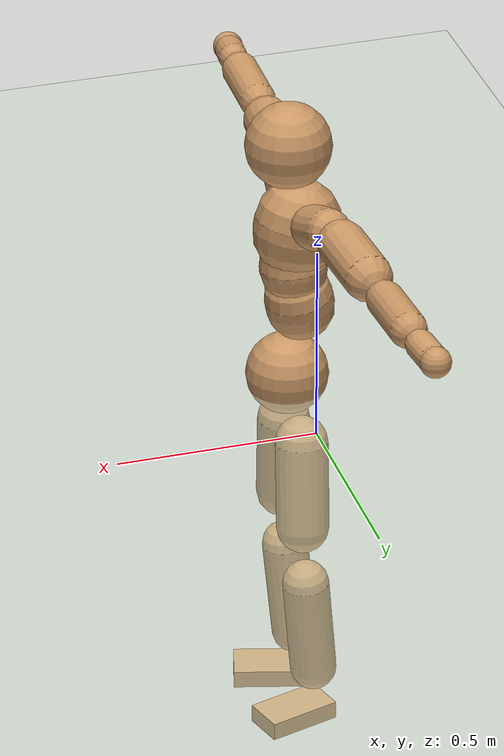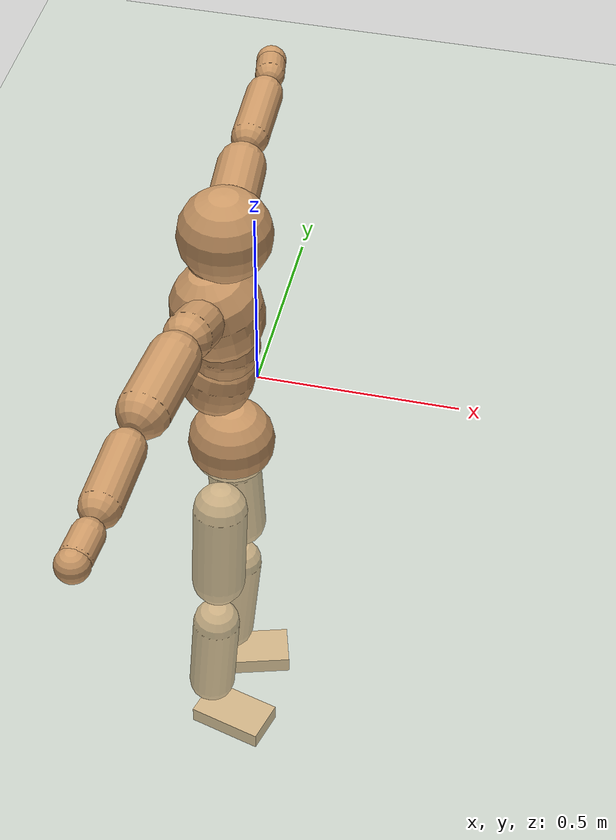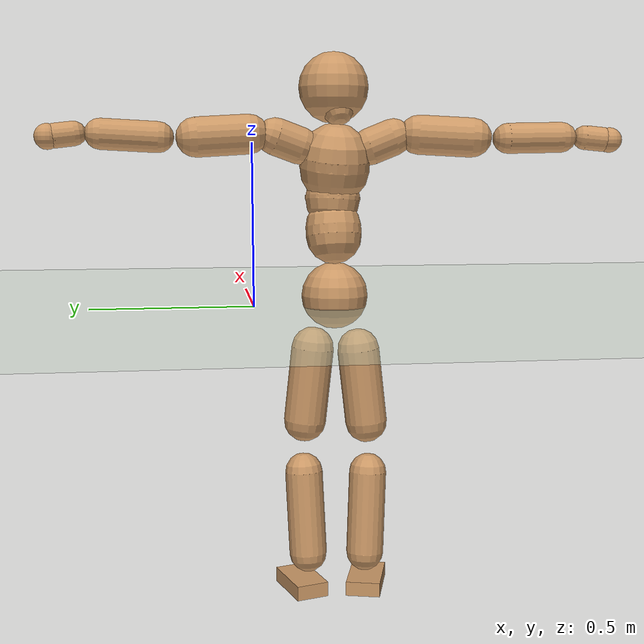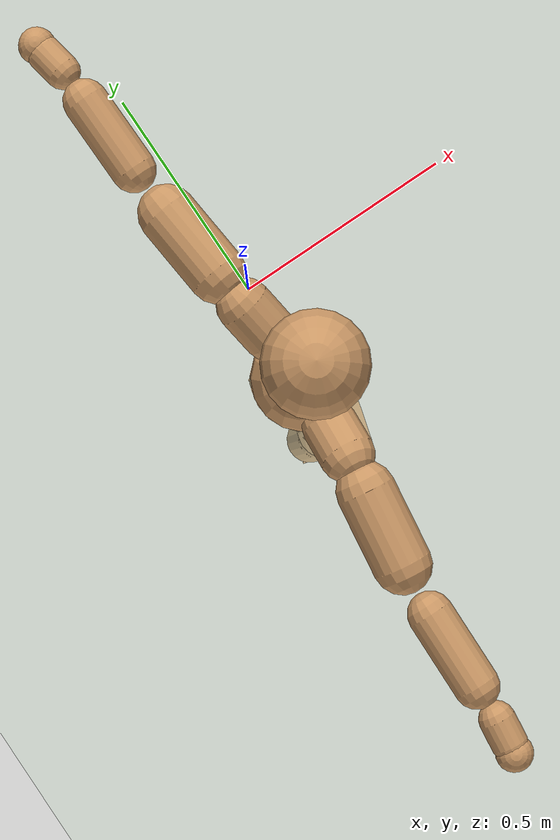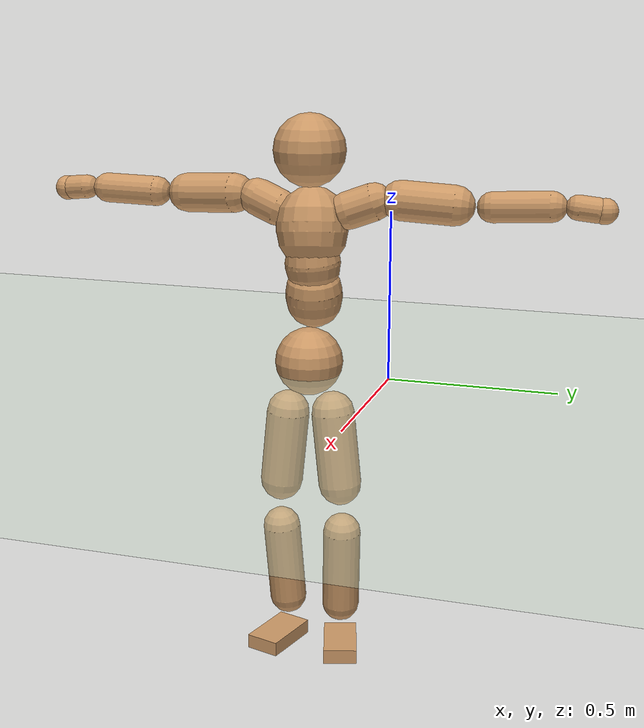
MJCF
<mujoco model="humanoid">
  <compiler coordinate="local"/>
  <default>
    <joint damping="0.0" armature="0.01" stiffness="0.0" limited="true"/>
    <geom conaffinity="1" condim="3" contype="7" margin="0.001" rgba="0.8 0.6 .4 1"/>
  </default>
  <asset>
    <texture type="skybox" builtin="gradient" rgb1=".4 .5 .6" rgb2="0 0 0" width="100" height="100"/>
    <texture builtin="flat" height="1278" mark="cross" markrgb="1 1 1" name="texgeom" random="0.01" rgb1="0.8 0.6 0.4" rgb2="0.8 0.6 0.4" type="cube" width="127"/>
    <texture builtin="checker" height="100" name="texplane" rgb1="0 0 0" rgb2="0.8 0.8 0.8" type="2d" width="100"/>
    <material name="MatPlane" reflectance="0.5" shininess="1" specular="1" texrepeat="60 60" texture="texplane"/>
    <material name="geom" texture="texgeom" texuniform="true"/>
  </asset>
  <worldbody>
    <light cutoff="100" diffuse="1 1 1" dir="-0 0 -1.3" directional="true" exponent="1" pos="0 0 1.3" specular=".1 .1 .1"/>
    <geom conaffinity="1" condim="3" name="floor" pos="0 0 0" rgba="0.8 0.9 0.8 1" size="100 100 .2" type="plane" material="MatPlane"/>
    <body name="Pelvis" pos="-0.0021 -0.2504 0.0331">
      <freejoint name="Pelvis"/>
      <geom type="sphere" contype="1" conaffinity="1" density="500" size="0.1034" pos="0.0000 0.0000 0.0000" name="Pelvis"/>
      <body name="L_Hip" pos="-0.0171 0.0629 -0.0854">
        <joint name="L_Hip_x" type="hinge" pos="0 0 0" axis="1 0 0" stiffness="800" damping="80" armature="0.02" range="-180.0000 180.0000"/>
        <joint name="L_Hip_y" type="hinge" pos="0 0 0" axis="0 1 0" stiffness="800" damping="80" armature="0.02" range="-180.0000 180.0000"/>
        <joint name="L_Hip_z" type="hinge" pos="0 0 0" axis="0 0 1" stiffness="800" damping="80" armature="0.02" range="-180.0000 180.0000"/>
        <geom type="capsule" contype="1" conaffinity="1" density="500" fromto="0.0012 0.0083 -0.0770 0.0049 0.0331 -0.3080" size="0.0661" name="L_Hip"/>
        <body name="L_Knee" pos="0.0061 0.0414 -0.385">
          <joint name="L_Knee_x" type="hinge" pos="0 0 0" axis="1 0 0" stiffness="800" damping="80" armature="0.02" range="-180.0000 180.0000"/>
          <joint name="L_Knee_y" type="hinge" pos="0 0 0" axis="0 1 0" stiffness="800" damping="80" armature="0.02" range="-180.0000 180.0000"/>
          <joint name="L_Knee_z" type="hinge" pos="0 0 0" axis="0 0 1" stiffness="800" damping="80" armature="0.02" range="-180.0000 180.0000"/>
          <geom type="capsule" contype="1" conaffinity="1" density="500" fromto="-0.0081 -0.0033 -0.0869 -0.0322 -0.0134 -0.3478" size="0.0587" name="L_Knee"/>
          <body name="L_Ankle" pos="-0.0403 -0.0167 -0.4347">
            <joint name="L_Ankle_x" type="hinge" pos="0 0 0" axis="1 0 0" stiffness="800" damping="80" armature="0.02" range="-180.0000 180.0000"/>
            <joint name="L_Ankle_y" type="hinge" pos="0 0 0" axis="0 1 0" stiffness="800" damping="80" armature="0.02" range="-180.0000 180.0000"/>
            <joint name="L_Ankle_z" type="hinge" pos="0 0 0" axis="0 0 1" stiffness="800" damping="80" armature="0.02" range="-180.0000 180.0000"/>
            <geom type="box" contype="1" conaffinity="1" density="500" pos="0.0634 0.0188 -0.0306" size="0.0934 0.0522 0.0231" quat="0.9897 0.0000 0.0000 0.1434" name="L_Ankle"/>
            <body name="L_Toe" pos="0.1268 0.0375 -0.0613">
              <joint name="L_Toe_x" type="hinge" pos="0 0 0" axis="1 0 0" stiffness="500" damping="50" armature="0.02" range="-180.0000 180.0000"/>
              <joint name="L_Toe_y" type="hinge" pos="0 0 0" axis="0 1 0" stiffness="500" damping="50" armature="0.02" range="-180.0000 180.0000"/>
              <joint name="L_Toe_z" type="hinge" pos="0 0 0" axis="0 0 1" stiffness="500" damping="50" armature="0.02" range="-180.0000 180.0000"/>
              <geom type="box" contype="1" conaffinity="1" density="500" pos="0.0000 0.0000 0.0291" size="0.0011 0.0026 0.0011" quat="0.9889 0.0000 0.0000 0.1484" name="L_Toe"/>
            </body>
          </body>
        </body>
      </body>
      <body name="R_Hip" pos="-0.0124 -0.0648 -0.0938">
        <joint name="R_Hip_x" type="hinge" pos="0 0 0" axis="1 0 0" stiffness="800" damping="80" armature="0.02" range="-180.0000 180.0000"/>
        <joint name="R_Hip_y" type="hinge" pos="0 0 0" axis="0 1 0" stiffness="800" damping="80" armature="0.02" range="-180.0000 180.0000"/>
        <joint name="R_Hip_z" type="hinge" pos="0 0 0" axis="0 0 1" stiffness="800" damping="80" armature="0.02" range="-180.0000 180.0000"/>
        <geom type="capsule" contype="1" conaffinity="1" density="500" fromto="-0.0014 -0.0083 -0.0769 -0.0056 -0.0333 -0.3075" size="0.0657" name="R_Hip"/>
        <body name="R_Knee" pos="-0.007 -0.0417 -0.3844">
          <joint name="R_Knee_x" type="hinge" pos="0 0 0" axis="1 0 0" stiffness="800" damping="80" armature="0.02" range="-180.0000 180.0000"/>
          <joint name="R_Knee_y" type="hinge" pos="0 0 0" axis="0 1 0" stiffness="800" damping="80" armature="0.02" range="-180.0000 180.0000"/>
          <joint name="R_Knee_z" type="hinge" pos="0 0 0" axis="0 0 1" stiffness="800" damping="80" armature="0.02" range="-180.0000 180.0000"/>
          <geom type="capsule" contype="1" conaffinity="1" density="500" fromto="-0.0075 0.0041 -0.0856 -0.0298 0.0164 -0.3422" size="0.0586" name="R_Knee"/>
          <body name="R_Ankle" pos="-0.0373 0.0206 -0.4278">
            <joint name="R_Ankle_x" type="hinge" pos="0 0 0" axis="1 0 0" stiffness="800" damping="80" armature="0.02" range="-180.0000 180.0000"/>
            <joint name="R_Ankle_y" type="hinge" pos="0 0 0" axis="0 1 0" stiffness="800" damping="80" armature="0.02" range="-180.0000 180.0000"/>
            <joint name="R_Ankle_z" type="hinge" pos="0 0 0" axis="0 0 1" stiffness="800" damping="80" armature="0.02" range="-180.0000 180.0000"/>
            <geom type="box" contype="1" conaffinity="1" density="500" pos="0.0678 -0.0185 -0.0312" size="0.0941 0.0541 0.0227" quat="0.9911 0.0000 0.0000 -0.1329" name="R_Ankle"/>
            <body name="R_Toe" pos="0.1356 -0.037 -0.0623">
              <joint name="R_Toe_x" type="hinge" pos="0 0 0" axis="1 0 0" stiffness="500" damping="50" armature="0.02" range="-180.0000 180.0000"/>
              <joint name="R_Toe_y" type="hinge" pos="0 0 0" axis="0 1 0" stiffness="500" damping="50" armature="0.02" range="-180.0000 180.0000"/>
              <joint name="R_Toe_z" type="hinge" pos="0 0 0" axis="0 0 1" stiffness="500" damping="50" armature="0.02" range="-180.0000 180.0000"/>
              <geom type="box" contype="1" conaffinity="1" density="500" pos="0.0000 0.0000 0.0312" size="0.0012 0.0027 0.0011" quat="0.9922 0.0000 0.0000 -0.1244" name="R_Toe"/>
            </body>
          </body>
        </body>
      </body>
      <body name="Torso" pos="-0.0425 0.0045 0.1298">
        <joint name="Torso_x" type="hinge" pos="0 0 0" axis="1 0 0" stiffness="1000" damping="100" armature="0.02" range="-180.0000 180.0000"/>
        <joint name="Torso_y" type="hinge" pos="0 0 0" axis="0 1 0" stiffness="1000" damping="100" armature="0.02" range="-180.0000 180.0000"/>
        <joint name="Torso_z" type="hinge" pos="0 0 0" axis="0 0 1" stiffness="1000" damping="100" armature="0.02" range="-180.0000 180.0000"/>
        <geom type="capsule" contype="1" conaffinity="1" density="500" fromto="0.0164 0.0027 0.0849 0.0109 0.0018 0.0566" size="0.0854" name="Torso"/>
        <body name="Spine" pos="0.0273 0.0045 0.1416">
          <joint name="Spine_x" type="hinge" pos="0 0 0" axis="1 0 0" stiffness="1000" damping="100" armature="0.02" range="-180.0000 180.0000"/>
          <joint name="Spine_y" type="hinge" pos="0 0 0" axis="0 1 0" stiffness="1000" damping="100" armature="0.02" range="-180.0000 180.0000"/>
          <joint name="Spine_z" type="hinge" pos="0 0 0" axis="0 0 1" stiffness="1000" damping="100" armature="0.02" range="-180.0000 180.0000"/>
          <geom type="capsule" contype="1" conaffinity="1" density="500" fromto="0.0029 -0.0016 0.0348 0.0019 -0.0010 0.0232" size="0.0841" name="Spine"/>
          <body name="Chest" pos="0.0048 -0.0026 0.058">
            <joint name="Chest_x" type="hinge" pos="0 0 0" axis="1 0 0" stiffness="1000" damping="100" armature="0.02" range="-180.0000 180.0000"/>
            <joint name="Chest_y" type="hinge" pos="0 0 0" axis="0 1 0" stiffness="1000" damping="100" armature="0.02" range="-180.0000 180.0000"/>
            <joint name="Chest_z" type="hinge" pos="0 0 0" axis="0 0 1" stiffness="1000" damping="100" armature="0.02" range="-180.0000 180.0000"/>
            <geom type="capsule" contype="1" conaffinity="1" density="500" fromto="-0.0162 -0.0047 0.0906 -0.0108 -0.0031 0.0604" size="0.107" name="Chest"/>
            <body name="Neck" pos="-0.0386 -0.0134 0.2179">
              <joint name="Neck_x" type="hinge" pos="0 0 0" axis="1 0 0" stiffness="500" damping="50" armature="0.02" range="-180.0000 180.0000"/>
              <joint name="Neck_y" type="hinge" pos="0 0 0" axis="0 1 0" stiffness="500" damping="50" armature="0.02" range="-180.0000 180.0000"/>
              <joint name="Neck_z" type="hinge" pos="0 0 0" axis="0 0 1" stiffness="500" damping="50" armature="0.02" range="-180.0000 180.0000"/>
              <geom type="capsule" contype="1" conaffinity="1" density="500" fromto="0.0096 0.0020 0.0170 0.0384 0.0080 0.0681" size="0.0469" name="Neck"/>
              <body name="Head" pos="0.048 0.01 0.0852">
                <joint name="Head_x" type="hinge" pos="0 0 0" axis="1 0 0" stiffness="500" damping="50" armature="0.02" range="-180.0000 180.0000"/>
                <joint name="Head_y" type="hinge" pos="0 0 0" axis="0 1 0" stiffness="500" damping="50" armature="0.02" range="-180.0000 180.0000"/>
                <joint name="Head_z" type="hinge" pos="0 0 0" axis="0 0 1" stiffness="500" damping="50" armature="0.02" range="-180.0000 180.0000"/>
                <geom type="sphere" contype="1" conaffinity="1" density="500" size="0.1070" pos="0.0000 0.0000 0.0000" name="Head"/>
              </body>
            </body>
            <body name="L_Thorax" pos="-0.0183 0.0753 0.1187">
              <joint name="L_Thorax_x" type="hinge" pos="0 0 0" axis="1 0 0" stiffness="500" damping="50" armature="0.02" range="-180.0000 180.0000"/>
              <joint name="L_Thorax_y" type="hinge" pos="0 0 0" axis="0 1 0" stiffness="500" damping="50" armature="0.02" range="-180.0000 180.0000"/>
              <joint name="L_Thorax_z" type="hinge" pos="0 0 0" axis="0 0 1" stiffness="500" damping="50" armature="0.02" range="-180.0000 180.0000"/>
              <geom type="capsule" contype="1" conaffinity="1" density="500" fromto="-0.0042 0.0258 0.0093 -0.0167 0.1030 0.0372" size="0.056" name="L_Thorax"/>
              <body name="L_Shoulder" pos="-0.0208 0.1288 0.0465">
                <joint name="L_Shoulder_x" type="hinge" pos="0 0 0" axis="1 0 0" stiffness="500" damping="50" armature="0.02" range="-720.0000 720.0000"/>
                <joint name="L_Shoulder_y" type="hinge" pos="0 0 0" axis="0 1 0" stiffness="500" damping="50" armature="0.02" range="-720.0000 720.0000"/>
                <joint name="L_Shoulder_z" type="hinge" pos="0 0 0" axis="0 0 1" stiffness="500" damping="50" armature="0.02" range="-720.0000 720.0000"/>
                <geom type="capsule" contype="1" conaffinity="1" density="500" fromto="-0.0052 0.0523 -0.0033 -0.0207 0.2093 -0.0132" size="0.0591" name="L_Shoulder"/>
                <body name="L_Elbow" pos="-0.0259 0.2617 -0.0165">
                  <joint name="L_Elbow_x" type="hinge" pos="0 0 0" axis="1 0 0" stiffness="500" damping="50" armature="0.02" range="-720.0000 720.0000"/>
                  <joint name="L_Elbow_y" type="hinge" pos="0 0 0" axis="0 1 0" stiffness="500" damping="50" armature="0.02" range="-720.0000 720.0000"/>
                  <joint name="L_Elbow_z" type="hinge" pos="0 0 0" axis="0 0 1" stiffness="500" damping="50" armature="0.02" range="-720.0000 720.0000"/>
                  <geom type="capsule" contype="1" conaffinity="1" density="500" fromto="-0.0012 0.0553 0.0028 -0.0047 0.2213 0.0113" size="0.0453" name="L_Elbow"/>
                  <body name="L_Wrist" pos="-0.0059 0.2767 0.0141">
                    <joint name="L_Wrist_x" type="hinge" pos="0 0 0" axis="1 0 0" stiffness="300" damping="30" armature="0.02" range="-180.0000 180.0000"/>
                    <joint name="L_Wrist_y" type="hinge" pos="0 0 0" axis="0 1 0" stiffness="300" damping="30" armature="0.02" range="-180.0000 180.0000"/>
                    <joint name="L_Wrist_z" type="hinge" pos="0 0 0" axis="0 0 1" stiffness="300" damping="30" armature="0.02" range="-180.0000 180.0000"/>
                    <geom type="capsule" contype="1" conaffinity="1" density="500" fromto="-0.0033 0.0183 -0.0022 -0.0132 0.0732 -0.0090" size="0.0361" name="L_Wrist"/>
                    <body name="L_Hand" pos="-0.0165 0.0915 -0.0112">
                      <joint name="L_Hand_x" type="hinge" pos="0 0 0" axis="1 0 0" stiffness="300" damping="30" armature="0.02" range="-180.0000 180.0000"/>
                      <joint name="L_Hand_y" type="hinge" pos="0 0 0" axis="0 1 0" stiffness="300" damping="30" armature="0.02" range="-180.0000 180.0000"/>
                      <joint name="L_Hand_z" type="hinge" pos="0 0 0" axis="0 0 1" stiffness="300" damping="30" armature="0.02" range="-180.0000 180.0000"/>
                      <geom type="sphere" contype="1" conaffinity="1" density="500" size="0.0375" pos="0.0000 0.0000 0.0000" name="L_Hand"/>
                    </body>
                  </body>
                </body>
              </body>
            </body>
            <body name="R_Thorax" pos="-0.0239 -0.0855 0.1165">
              <joint name="R_Thorax_x" type="hinge" pos="0 0 0" axis="1 0 0" stiffness="500" damping="50" armature="0.02" range="-180.0000 180.0000"/>
              <joint name="R_Thorax_y" type="hinge" pos="0 0 0" axis="0 1 0" stiffness="500" damping="50" armature="0.02" range="-180.0000 180.0000"/>
              <joint name="R_Thorax_z" type="hinge" pos="0 0 0" axis="0 0 1" stiffness="500" damping="50" armature="0.02" range="-180.0000 180.0000"/>
              <geom type="capsule" contype="1" conaffinity="1" density="500" fromto="-0.0019 -0.0237 0.0097 -0.0076 -0.0948 0.0388" size="0.0559" name="R_Thorax"/>
              <body name="R_Shoulder" pos="-0.0095 -0.1184 0.0485">
                <joint name="R_Shoulder_x" type="hinge" pos="0 0 0" axis="1 0 0" stiffness="500" damping="50" armature="0.02" range="-720.0000 720.0000"/>
                <joint name="R_Shoulder_y" type="hinge" pos="0 0 0" axis="0 1 0" stiffness="500" damping="50" armature="0.02" range="-720.0000 720.0000"/>
                <joint name="R_Shoulder_z" type="hinge" pos="0 0 0" axis="0 0 1" stiffness="500" damping="50" armature="0.02" range="-720.0000 720.0000"/>
                <geom type="capsule" contype="1" conaffinity="1" density="500" fromto="-0.0072 -0.0536 -0.0028 -0.0287 -0.2144 -0.0114" size="0.0597" name="R_Shoulder"/>
                <body name="R_Elbow" pos="-0.0359 -0.268 -0.0142">
                  <joint name="R_Elbow_x" type="hinge" pos="0 0 0" axis="1 0 0" stiffness="500" damping="50" armature="0.02" range="-720.0000 720.0000"/>
                  <joint name="R_Elbow_y" type="hinge" pos="0 0 0" axis="0 1 0" stiffness="500" damping="50" armature="0.02" range="-720.0000 720.0000"/>
                  <joint name="R_Elbow_z" type="hinge" pos="0 0 0" axis="0 0 1" stiffness="500" damping="50" armature="0.02" range="-720.0000 720.0000"/>
                  <geom type="capsule" contype="1" conaffinity="1" density="500" fromto="-0.0011 -0.0557 0.0011 -0.0045 -0.2226 0.0045" size="0.0459" name="R_Elbow"/>
                  <body name="R_Wrist" pos="-0.0057 -0.2783 0.0057">
                    <joint name="R_Wrist_x" type="hinge" pos="0 0 0" axis="1 0 0" stiffness="300" damping="30" armature="0.02" range="-180.0000 180.0000"/>
                    <joint name="R_Wrist_y" type="hinge" pos="0 0 0" axis="0 1 0" stiffness="300" damping="30" armature="0.02" range="-180.0000 180.0000"/>
                    <joint name="R_Wrist_z" type="hinge" pos="0 0 0" axis="0 0 1" stiffness="300" damping="30" armature="0.02" range="-180.0000 180.0000"/>
                    <geom type="capsule" contype="1" conaffinity="1" density="500" fromto="-0.0021 -0.0187 -0.0018 -0.0085 -0.0749 -0.0074" size="0.0368" name="R_Wrist"/>
                    <body name="R_Hand" pos="-0.0106 -0.0936 -0.0092">
                      <joint name="R_Hand_x" type="hinge" pos="0 0 0" axis="1 0 0" stiffness="300" damping="30" armature="0.02" range="-180.0000 180.0000"/>
                      <joint name="R_Hand_y" type="hinge" pos="0 0 0" axis="0 1 0" stiffness="300" damping="30" armature="0.02" range="-180.0000 180.0000"/>
                      <joint name="R_Hand_z" type="hinge" pos="0 0 0" axis="0 0 1" stiffness="300" damping="30" armature="0.02" range="-180.0000 180.0000"/>
                      <geom type="sphere" contype="1" conaffinity="1" density="500" size="0.0381" pos="0.0000 0.0000 0.0000" name="R_Hand"/>
                    </body>
                  </body>
                </body>
              </body>
            </body>
          </body>
        </body>
      </body>
    </body>
  </worldbody>
  <actuator>
    <motor name="L_Hip_x" joint="L_Hip_x" gear="500"/>
    <motor name="L_Hip_y" joint="L_Hip_y" gear="500"/>
    <motor name="L_Hip_z" joint="L_Hip_z" gear="500"/>
    <motor name="L_Knee_x" joint="L_Knee_x" gear="500"/>
    <motor name="L_Knee_y" joint="L_Knee_y" gear="500"/>
    <motor name="L_Knee_z" joint="L_Knee_z" gear="500"/>
    <motor name="L_Ankle_x" joint="L_Ankle_x" gear="500"/>
    <motor name="L_Ankle_y" joint="L_Ankle_y" gear="500"/>
    <motor name="L_Ankle_z" joint="L_Ankle_z" gear="500"/>
    <motor name="L_Toe_x" joint="L_Toe_x" gear="500"/>
    <motor name="L_Toe_y" joint="L_Toe_y" gear="500"/>
    <motor name="L_Toe_z" joint="L_Toe_z" gear="500"/>
    <motor name="R_Hip_x" joint="R_Hip_x" gear="500"/>
    <motor name="R_Hip_y" joint="R_Hip_y" gear="500"/>
    <motor name="R_Hip_z" joint="R_Hip_z" gear="500"/>
    <motor name="R_Knee_x" joint="R_Knee_x" gear="500"/>
    <motor name="R_Knee_y" joint="R_Knee_y" gear="500"/>
    <motor name="R_Knee_z" joint="R_Knee_z" gear="500"/>
    <motor name="R_Ankle_x" joint="R_Ankle_x" gear="500"/>
    <motor name="R_Ankle_y" joint="R_Ankle_y" gear="500"/>
    <motor name="R_Ankle_z" joint="R_Ankle_z" gear="500"/>
    <motor name="R_Toe_x" joint="R_Toe_x" gear="500"/>
    <motor name="R_Toe_y" joint="R_Toe_y" gear="500"/>
    <motor name="R_Toe_z" joint="R_Toe_z" gear="500"/>
    <motor name="Torso_x" joint="Torso_x" gear="500"/>
    <motor name="Torso_y" joint="Torso_y" gear="500"/>
    <motor name="Torso_z" joint="Torso_z" gear="500"/>
    <motor name="Spine_x" joint="Spine_x" gear="500"/>
    <motor name="Spine_y" joint="Spine_y" gear="500"/>
    <motor name="Spine_z" joint="Spine_z" gear="500"/>
    <motor name="Chest_x" joint="Chest_x" gear="500"/>
    <motor name="Chest_y" joint="Chest_y" gear="500"/>
    <motor name="Chest_z" joint="Chest_z" gear="500"/>
    <motor name="Neck_x" joint="Neck_x" gear="500"/>
    <motor name="Neck_y" joint="Neck_y" gear="500"/>
    <motor name="Neck_z" joint="Neck_z" gear="500"/>
    <motor name="Head_x" joint="Head_x" gear="500"/>
    <motor name="Head_y" joint="Head_y" gear="500"/>
    <motor name="Head_z" joint="Head_z" gear="500"/>
    <motor name="L_Thorax_x" joint="L_Thorax_x" gear="500"/>
    <motor name="L_Thorax_y" joint="L_Thorax_y" gear="500"/>
    <motor name="L_Thorax_z" joint="L_Thorax_z" gear="500"/>
    <motor name="L_Shoulder_x" joint="L_Shoulder_x" gear="500"/>
    <motor name="L_Shoulder_y" joint="L_Shoulder_y" gear="500"/>
    <motor name="L_Shoulder_z" joint="L_Shoulder_z" gear="500"/>
    <motor name="L_Elbow_x" joint="L_Elbow_x" gear="500"/>
    <motor name="L_Elbow_y" joint="L_Elbow_y" gear="500"/>
    <motor name="L_Elbow_z" joint="L_Elbow_z" gear="500"/>
    <motor name="L_Wrist_x" joint="L_Wrist_x" gear="500"/>
    <motor name="L_Wrist_y" joint="L_Wrist_y" gear="500"/>
    <motor name="L_Wrist_z" joint="L_Wrist_z" gear="500"/>
    <motor name="L_Hand_x" joint="L_Hand_x" gear="500"/>
    <motor name="L_Hand_y" joint="L_Hand_y" gear="500"/>
    <motor name="L_Hand_z" joint="L_Hand_z" gear="500"/>
    <motor name="R_Thorax_x" joint="R_Thorax_x" gear="500"/>
    <motor name="R_Thorax_y" joint="R_Thorax_y" gear="500"/>
    <motor name="R_Thorax_z" joint="R_Thorax_z" gear="500"/>
    <motor name="R_Shoulder_x" joint="R_Shoulder_x" gear="500"/>
    <motor name="R_Shoulder_y" joint="R_Shoulder_y" gear="500"/>
    <motor name="R_Shoulder_z" joint="R_Shoulder_z" gear="500"/>
    <motor name="R_Elbow_x" joint="R_Elbow_x" gear="500"/>
    <motor name="R_Elbow_y" joint="R_Elbow_y" gear="500"/>
    <motor name="R_Elbow_z" joint="R_Elbow_z" gear="500"/>
    <motor name="R_Wrist_x" joint="R_Wrist_x" gear="500"/>
    <motor name="R_Wrist_y" joint="R_Wrist_y" gear="500"/>
    <motor name="R_Wrist_z" joint="R_Wrist_z" gear="500"/>
    <motor name="R_Hand_x" joint="R_Hand_x" gear="500"/>
    <motor name="R_Hand_y" joint="R_Hand_y" gear="500"/>
    <motor name="R_Hand_z" joint="R_Hand_z" gear="500"/>
  </actuator>
  <contact>
    <exclude body1="Torso" body2="Chest"/>
    <exclude body1="Head" body2="Chest"/>
    <exclude body1="R_Knee" body2="R_Toe"/>
    <exclude body1="R_Knee" body2="L_Ankle"/>
    <exclude body1="R_Knee" body2="L_Toe"/>
    <exclude body1="L_Knee" body2="L_Toe"/>
    <exclude body1="L_Knee" body2="R_Ankle"/>
    <exclude body1="L_Knee" body2="R_Toe"/>
    <exclude body1="L_Shoulder" body2="Chest"/>
    <exclude body1="R_Shoulder" body2="Chest"/>
  </contact>
  <sensor/>
  <size njmax="700" nconmax="700"/>
</mujoco>
